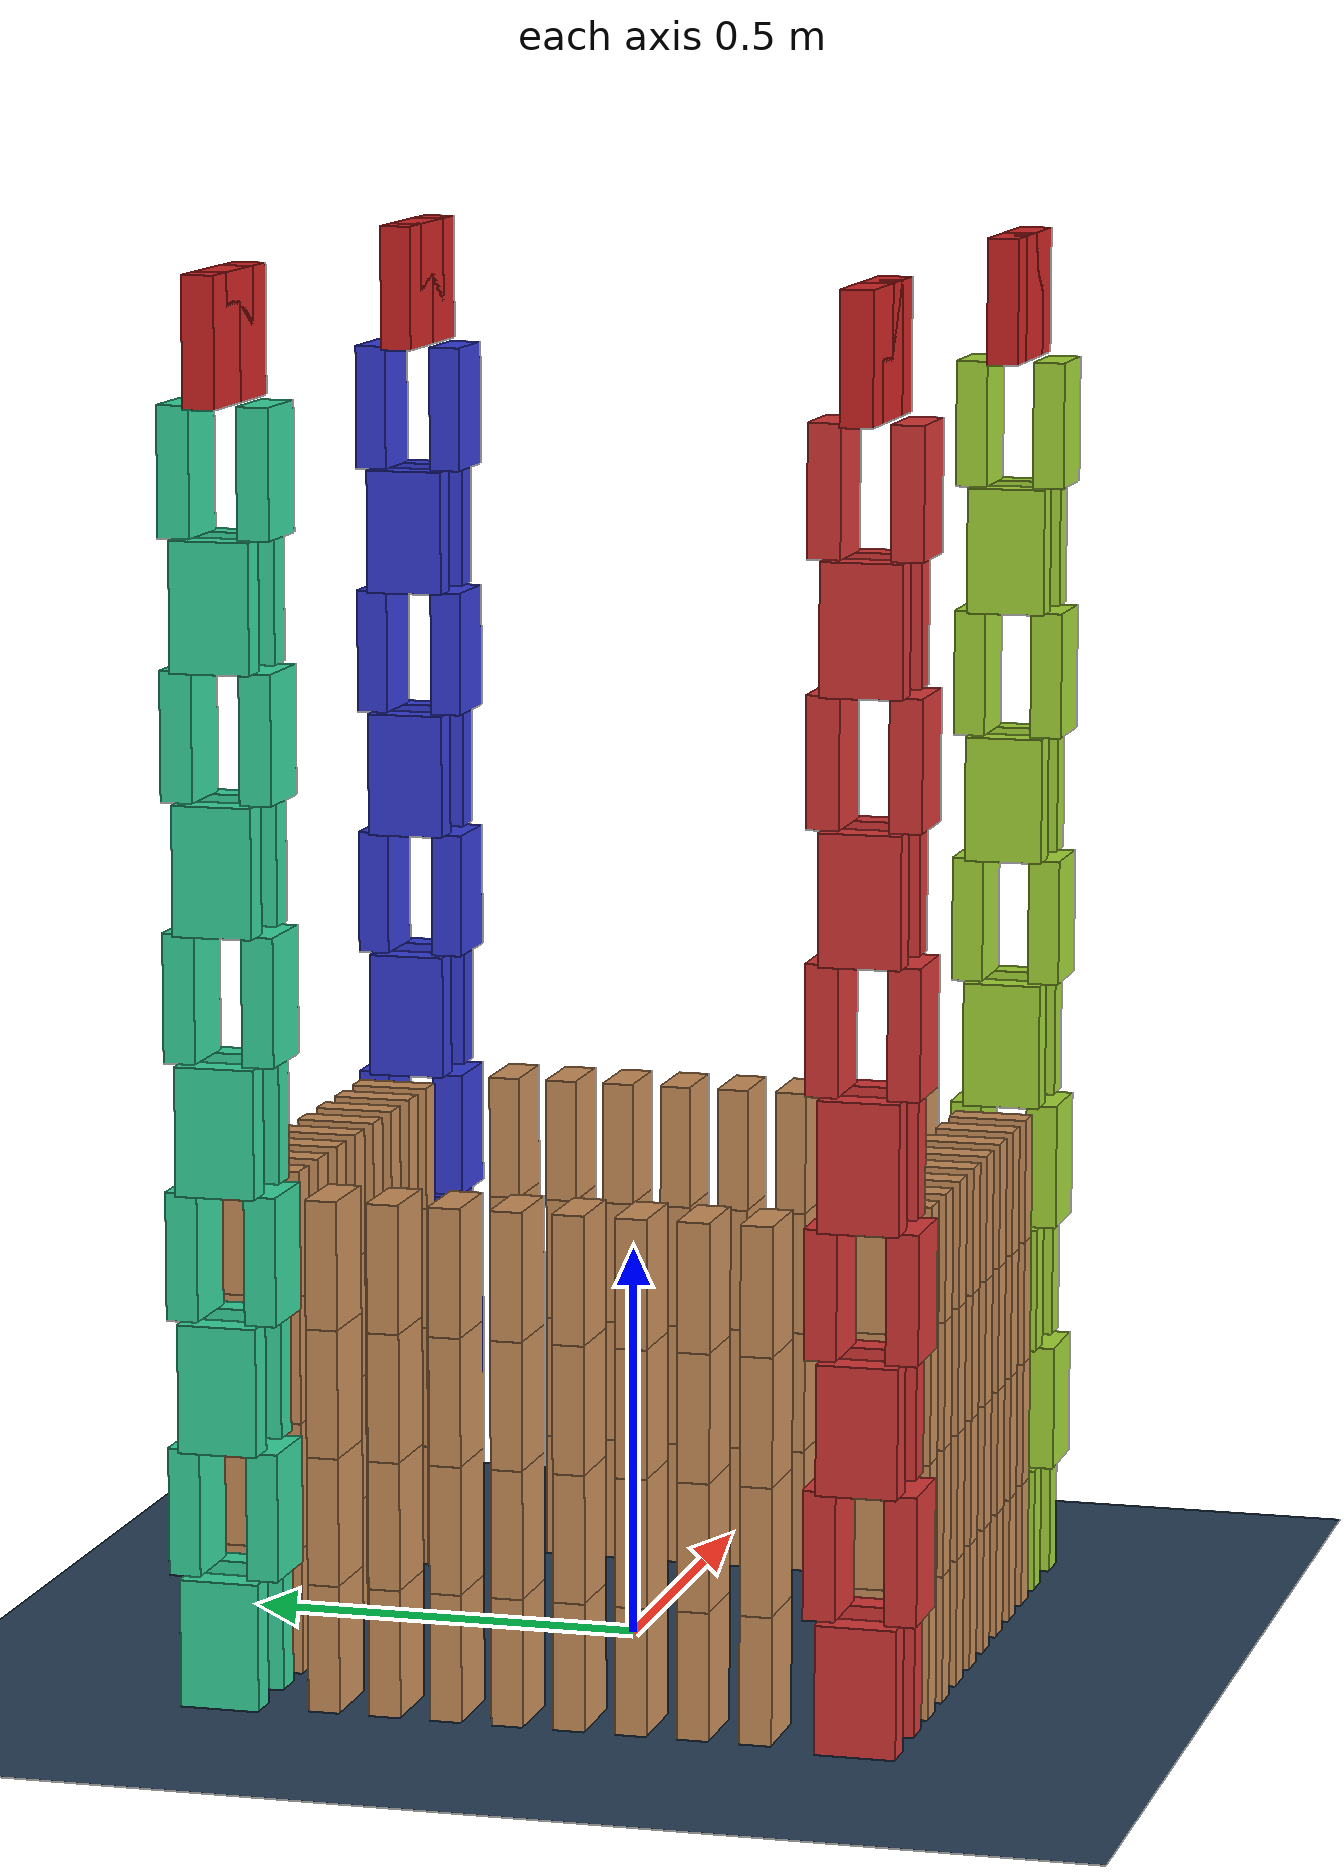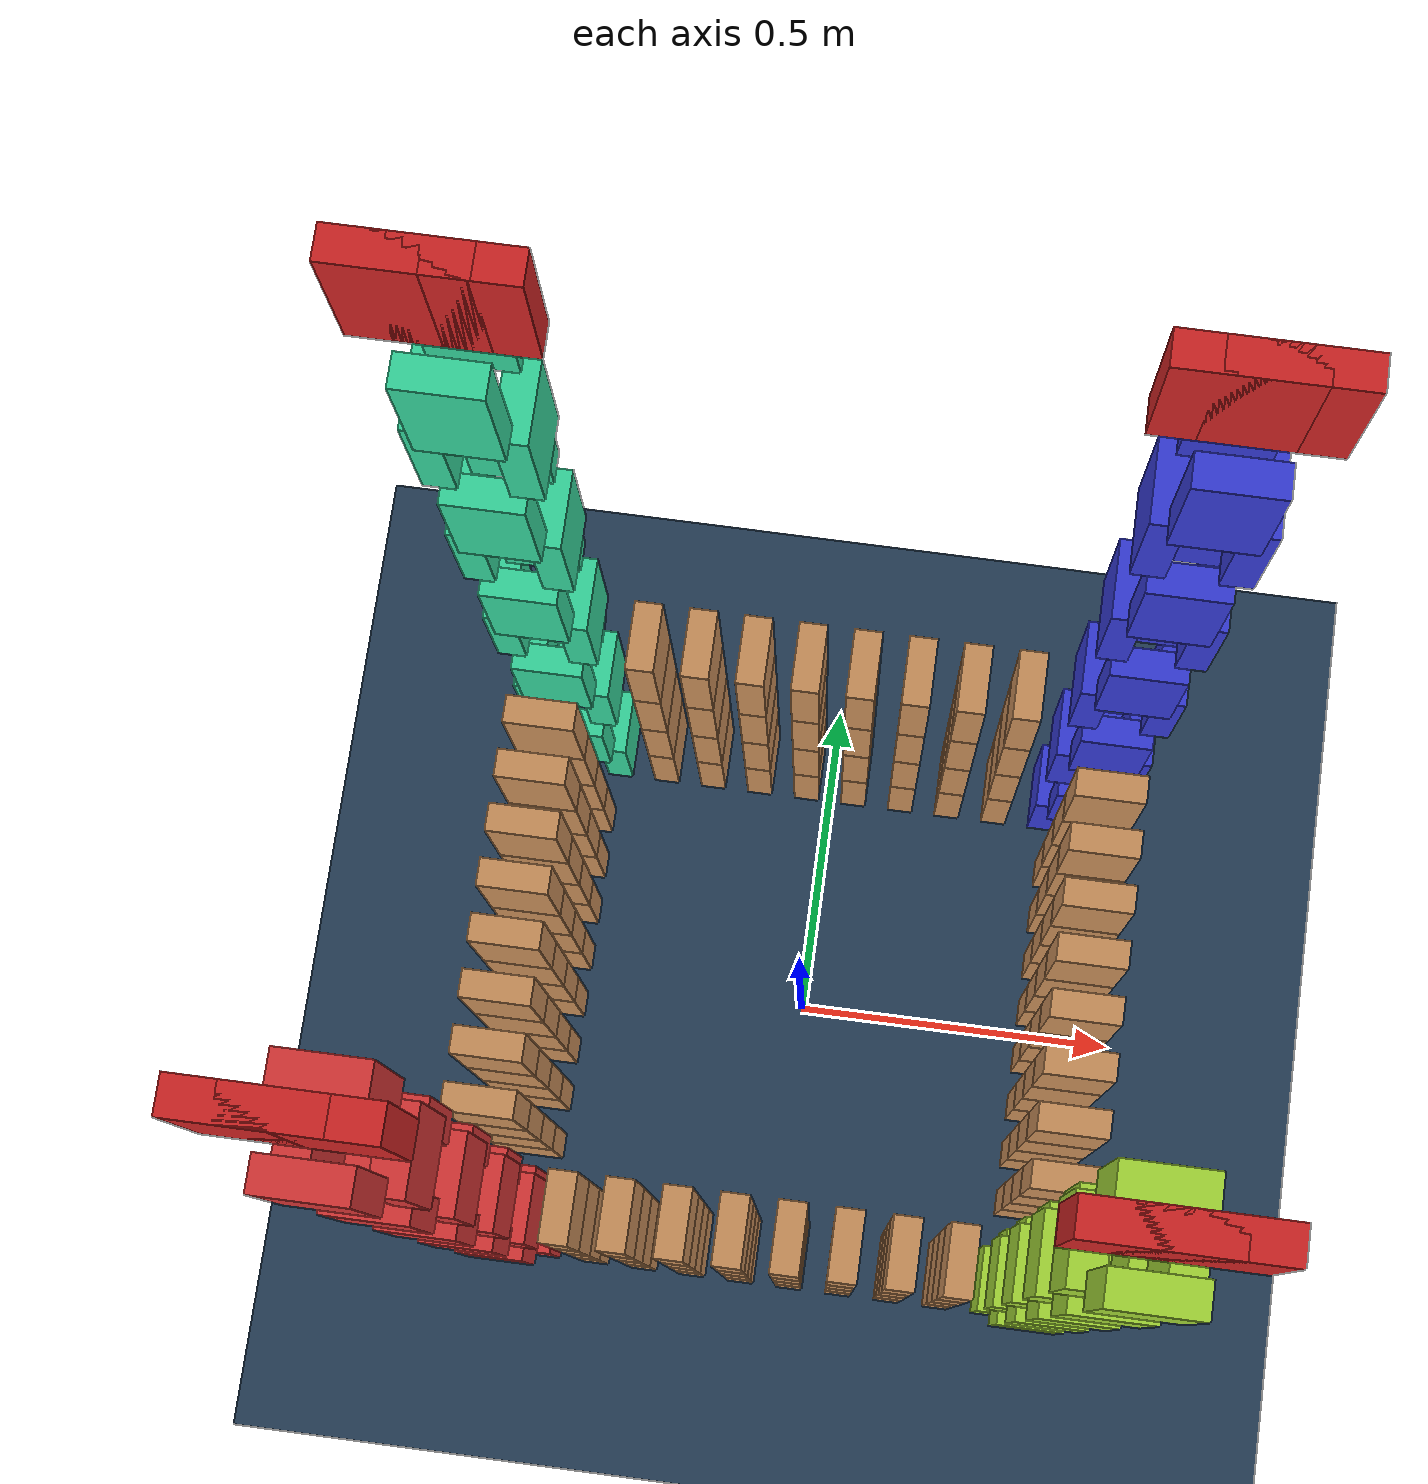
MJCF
<mujoco>
  <visual>
    <headlight diffuse="0.6 0.6 0.6" ambient="0.1 0.1 0.1" specular="0 0 0"/>
    <rgba haze="0.15 0.25 0.35 1"/>
    <global azimuth="120" elevation="-20"/>
  </visual>
  <asset>
    <texture type="skybox" builtin="gradient" rgb1="0.3 0.5 0.7" rgb2="0 0 0" width="512" height="3072"/>
    <texture type="2d" name="groundplane" builtin="checker" mark="edge" rgb1="0.2 0.3 0.4" rgb2="0.1 0.2 0.3" markrgb="0.8 0.8 0.8" width="300" height="300"/>
    <material name="groundplane" texture="groundplane" texuniform="true" texrepeat="5 5" reflectance="0.2"/>
  </asset>
  <worldbody>
    <light pos="0 0 1.5" dir="0 0 -1" directional="true"/>
    <geom name="floor" size="0 0 0.05" type="plane" material="groundplane"/>
    <body pos="-0.4500 -0.4000 0.0800" euler="0 0 0">
      <geom type="box" size="0.02 0.05 0.08" rgba="0.880 0.220 0.220 1"/>
      <freejoint/>
    </body>
    <body pos="-0.3500 -0.4000 0.0800" euler="0 0 0">
      <geom type="box" size="0.02 0.05 0.08" rgba="0.880 0.220 0.220 1"/>
      <freejoint/>
    </body>
    <body pos="-0.4000 -0.4500 0.2400" euler="0 0 90">
      <geom type="box" size="0.02 0.05 0.08" rgba="0.880 0.220 0.220 1"/>
      <freejoint/>
    </body>
    <body pos="-0.4000 -0.3500 0.2400" euler="0 0 90">
      <geom type="box" size="0.02 0.05 0.08" rgba="0.880 0.220 0.220 1"/>
      <freejoint/>
    </body>
    <body pos="-0.4500 -0.4000 0.4000" euler="0 0 0">
      <geom type="box" size="0.02 0.05 0.08" rgba="0.880 0.220 0.220 1"/>
      <freejoint/>
    </body>
    <body pos="-0.3500 -0.4000 0.4000" euler="0 0 0">
      <geom type="box" size="0.02 0.05 0.08" rgba="0.880 0.220 0.220 1"/>
      <freejoint/>
    </body>
    <body pos="-0.4000 -0.4500 0.5600" euler="0 0 90">
      <geom type="box" size="0.02 0.05 0.08" rgba="0.880 0.220 0.220 1"/>
      <freejoint/>
    </body>
    <body pos="-0.4000 -0.3500 0.5600" euler="0 0 90">
      <geom type="box" size="0.02 0.05 0.08" rgba="0.880 0.220 0.220 1"/>
      <freejoint/>
    </body>
    <body pos="-0.4500 -0.4000 0.7200" euler="0 0 0">
      <geom type="box" size="0.02 0.05 0.08" rgba="0.880 0.220 0.220 1"/>
      <freejoint/>
    </body>
    <body pos="-0.3500 -0.4000 0.7200" euler="0 0 0">
      <geom type="box" size="0.02 0.05 0.08" rgba="0.880 0.220 0.220 1"/>
      <freejoint/>
    </body>
    <body pos="-0.4000 -0.4500 0.8800" euler="0 0 90">
      <geom type="box" size="0.02 0.05 0.08" rgba="0.880 0.220 0.220 1"/>
      <freejoint/>
    </body>
    <body pos="-0.4000 -0.3500 0.8800" euler="0 0 90">
      <geom type="box" size="0.02 0.05 0.08" rgba="0.880 0.220 0.220 1"/>
      <freejoint/>
    </body>
    <body pos="-0.4500 -0.4000 1.0400" euler="0 0 0">
      <geom type="box" size="0.02 0.05 0.08" rgba="0.880 0.220 0.220 1"/>
      <freejoint/>
    </body>
    <body pos="-0.3500 -0.4000 1.0400" euler="0 0 0">
      <geom type="box" size="0.02 0.05 0.08" rgba="0.880 0.220 0.220 1"/>
      <freejoint/>
    </body>
    <body pos="-0.4000 -0.4500 1.2000" euler="0 0 90">
      <geom type="box" size="0.02 0.05 0.08" rgba="0.880 0.220 0.220 1"/>
      <freejoint/>
    </body>
    <body pos="-0.4000 -0.3500 1.2000" euler="0 0 90">
      <geom type="box" size="0.02 0.05 0.08" rgba="0.880 0.220 0.220 1"/>
      <freejoint/>
    </body>
    <body pos="-0.4500 -0.4000 1.3600" euler="0 0 0">
      <geom type="box" size="0.02 0.05 0.08" rgba="0.880 0.220 0.220 1"/>
      <freejoint/>
    </body>
    <body pos="-0.3500 -0.4000 1.3600" euler="0 0 0">
      <geom type="box" size="0.02 0.05 0.08" rgba="0.880 0.220 0.220 1"/>
      <freejoint/>
    </body>
    <body pos="-0.4000 -0.4500 1.5200" euler="0 0 90">
      <geom type="box" size="0.02 0.05 0.08" rgba="0.880 0.220 0.220 1"/>
      <freejoint/>
    </body>
    <body pos="-0.4000 -0.3500 1.5200" euler="0 0 90">
      <geom type="box" size="0.02 0.05 0.08" rgba="0.880 0.220 0.220 1"/>
      <freejoint/>
    </body>
    <body pos="-0.4500 -0.4000 1.6800" euler="0 0 90">
      <geom type="box" size="0.02 0.05 0.08" rgba="0.85 0.15 0.15 1"/>
      <freejoint/>
    </body>
    <body pos="-0.4000 -0.4000 1.6800" euler="0 0 90">
      <geom type="box" size="0.02 0.05 0.08" rgba="0.85 0.15 0.15 1"/>
      <freejoint/>
    </body>
    <body pos="-0.3500 -0.4000 1.6800" euler="0 0 90">
      <geom type="box" size="0.02 0.05 0.08" rgba="0.85 0.15 0.15 1"/>
      <freejoint/>
    </body>
    <body pos="0.3500 -0.4000 0.0800" euler="0 0 0">
      <geom type="box" size="0.02 0.05 0.08" rgba="0.669 0.880 0.220 1"/>
      <freejoint/>
    </body>
    <body pos="0.4500 -0.4000 0.0800" euler="0 0 0">
      <geom type="box" size="0.02 0.05 0.08" rgba="0.669 0.880 0.220 1"/>
      <freejoint/>
    </body>
    <body pos="0.4000 -0.4500 0.2400" euler="0 0 90">
      <geom type="box" size="0.02 0.05 0.08" rgba="0.669 0.880 0.220 1"/>
      <freejoint/>
    </body>
    <body pos="0.4000 -0.3500 0.2400" euler="0 0 90">
      <geom type="box" size="0.02 0.05 0.08" rgba="0.669 0.880 0.220 1"/>
      <freejoint/>
    </body>
    <body pos="0.3500 -0.4000 0.4000" euler="0 0 0">
      <geom type="box" size="0.02 0.05 0.08" rgba="0.669 0.880 0.220 1"/>
      <freejoint/>
    </body>
    <body pos="0.4500 -0.4000 0.4000" euler="0 0 0">
      <geom type="box" size="0.02 0.05 0.08" rgba="0.669 0.880 0.220 1"/>
      <freejoint/>
    </body>
    <body pos="0.4000 -0.4500 0.5600" euler="0 0 90">
      <geom type="box" size="0.02 0.05 0.08" rgba="0.669 0.880 0.220 1"/>
      <freejoint/>
    </body>
    <body pos="0.4000 -0.3500 0.5600" euler="0 0 90">
      <geom type="box" size="0.02 0.05 0.08" rgba="0.669 0.880 0.220 1"/>
      <freejoint/>
    </body>
    <body pos="0.3500 -0.4000 0.7200" euler="0 0 0">
      <geom type="box" size="0.02 0.05 0.08" rgba="0.669 0.880 0.220 1"/>
      <freejoint/>
    </body>
    <body pos="0.4500 -0.4000 0.7200" euler="0 0 0">
      <geom type="box" size="0.02 0.05 0.08" rgba="0.669 0.880 0.220 1"/>
      <freejoint/>
    </body>
    <body pos="0.4000 -0.4500 0.8800" euler="0 0 90">
      <geom type="box" size="0.02 0.05 0.08" rgba="0.669 0.880 0.220 1"/>
      <freejoint/>
    </body>
    <body pos="0.4000 -0.3500 0.8800" euler="0 0 90">
      <geom type="box" size="0.02 0.05 0.08" rgba="0.669 0.880 0.220 1"/>
      <freejoint/>
    </body>
    <body pos="0.3500 -0.4000 1.0400" euler="0 0 0">
      <geom type="box" size="0.02 0.05 0.08" rgba="0.669 0.880 0.220 1"/>
      <freejoint/>
    </body>
    <body pos="0.4500 -0.4000 1.0400" euler="0 0 0">
      <geom type="box" size="0.02 0.05 0.08" rgba="0.669 0.880 0.220 1"/>
      <freejoint/>
    </body>
    <body pos="0.4000 -0.4500 1.2000" euler="0 0 90">
      <geom type="box" size="0.02 0.05 0.08" rgba="0.669 0.880 0.220 1"/>
      <freejoint/>
    </body>
    <body pos="0.4000 -0.3500 1.2000" euler="0 0 90">
      <geom type="box" size="0.02 0.05 0.08" rgba="0.669 0.880 0.220 1"/>
      <freejoint/>
    </body>
    <body pos="0.3500 -0.4000 1.3600" euler="0 0 0">
      <geom type="box" size="0.02 0.05 0.08" rgba="0.669 0.880 0.220 1"/>
      <freejoint/>
    </body>
    <body pos="0.4500 -0.4000 1.3600" euler="0 0 0">
      <geom type="box" size="0.02 0.05 0.08" rgba="0.669 0.880 0.220 1"/>
      <freejoint/>
    </body>
    <body pos="0.4000 -0.4500 1.5200" euler="0 0 90">
      <geom type="box" size="0.02 0.05 0.08" rgba="0.669 0.880 0.220 1"/>
      <freejoint/>
    </body>
    <body pos="0.4000 -0.3500 1.5200" euler="0 0 90">
      <geom type="box" size="0.02 0.05 0.08" rgba="0.669 0.880 0.220 1"/>
      <freejoint/>
    </body>
    <body pos="0.3500 -0.4000 1.6800" euler="0 0 90">
      <geom type="box" size="0.02 0.05 0.08" rgba="0.85 0.15 0.15 1"/>
      <freejoint/>
    </body>
    <body pos="0.4000 -0.4000 1.6800" euler="0 0 90">
      <geom type="box" size="0.02 0.05 0.08" rgba="0.85 0.15 0.15 1"/>
      <freejoint/>
    </body>
    <body pos="0.4500 -0.4000 1.6800" euler="0 0 90">
      <geom type="box" size="0.02 0.05 0.08" rgba="0.85 0.15 0.15 1"/>
      <freejoint/>
    </body>
    <body pos="-0.4500 0.4000 0.0800" euler="0 0 0">
      <geom type="box" size="0.02 0.05 0.08" rgba="0.220 0.880 0.642 1"/>
      <freejoint/>
    </body>
    <body pos="-0.3500 0.4000 0.0800" euler="0 0 0">
      <geom type="box" size="0.02 0.05 0.08" rgba="0.220 0.880 0.642 1"/>
      <freejoint/>
    </body>
    <body pos="-0.4000 0.3500 0.2400" euler="0 0 90">
      <geom type="box" size="0.02 0.05 0.08" rgba="0.220 0.880 0.642 1"/>
      <freejoint/>
    </body>
    <body pos="-0.4000 0.4500 0.2400" euler="0 0 90">
      <geom type="box" size="0.02 0.05 0.08" rgba="0.220 0.880 0.642 1"/>
      <freejoint/>
    </body>
    <body pos="-0.4500 0.4000 0.4000" euler="0 0 0">
      <geom type="box" size="0.02 0.05 0.08" rgba="0.220 0.880 0.642 1"/>
      <freejoint/>
    </body>
    <body pos="-0.3500 0.4000 0.4000" euler="0 0 0">
      <geom type="box" size="0.02 0.05 0.08" rgba="0.220 0.880 0.642 1"/>
      <freejoint/>
    </body>
    <body pos="-0.4000 0.3500 0.5600" euler="0 0 90">
      <geom type="box" size="0.02 0.05 0.08" rgba="0.220 0.880 0.642 1"/>
      <freejoint/>
    </body>
    <body pos="-0.4000 0.4500 0.5600" euler="0 0 90">
      <geom type="box" size="0.02 0.05 0.08" rgba="0.220 0.880 0.642 1"/>
      <freejoint/>
    </body>
    <body pos="-0.4500 0.4000 0.7200" euler="0 0 0">
      <geom type="box" size="0.02 0.05 0.08" rgba="0.220 0.880 0.642 1"/>
      <freejoint/>
    </body>
    <body pos="-0.3500 0.4000 0.7200" euler="0 0 0">
      <geom type="box" size="0.02 0.05 0.08" rgba="0.220 0.880 0.642 1"/>
      <freejoint/>
    </body>
    <body pos="-0.4000 0.3500 0.8800" euler="0 0 90">
      <geom type="box" size="0.02 0.05 0.08" rgba="0.220 0.880 0.642 1"/>
      <freejoint/>
    </body>
    <body pos="-0.4000 0.4500 0.8800" euler="0 0 90">
      <geom type="box" size="0.02 0.05 0.08" rgba="0.220 0.880 0.642 1"/>
      <freejoint/>
    </body>
    <body pos="-0.4500 0.4000 1.0400" euler="0 0 0">
      <geom type="box" size="0.02 0.05 0.08" rgba="0.220 0.880 0.642 1"/>
      <freejoint/>
    </body>
    <body pos="-0.3500 0.4000 1.0400" euler="0 0 0">
      <geom type="box" size="0.02 0.05 0.08" rgba="0.220 0.880 0.642 1"/>
      <freejoint/>
    </body>
    <body pos="-0.4000 0.3500 1.2000" euler="0 0 90">
      <geom type="box" size="0.02 0.05 0.08" rgba="0.220 0.880 0.642 1"/>
      <freejoint/>
    </body>
    <body pos="-0.4000 0.4500 1.2000" euler="0 0 90">
      <geom type="box" size="0.02 0.05 0.08" rgba="0.220 0.880 0.642 1"/>
      <freejoint/>
    </body>
    <body pos="-0.4500 0.4000 1.3600" euler="0 0 0">
      <geom type="box" size="0.02 0.05 0.08" rgba="0.220 0.880 0.642 1"/>
      <freejoint/>
    </body>
    <body pos="-0.3500 0.4000 1.3600" euler="0 0 0">
      <geom type="box" size="0.02 0.05 0.08" rgba="0.220 0.880 0.642 1"/>
      <freejoint/>
    </body>
    <body pos="-0.4000 0.3500 1.5200" euler="0 0 90">
      <geom type="box" size="0.02 0.05 0.08" rgba="0.220 0.880 0.642 1"/>
      <freejoint/>
    </body>
    <body pos="-0.4000 0.4500 1.5200" euler="0 0 90">
      <geom type="box" size="0.02 0.05 0.08" rgba="0.220 0.880 0.642 1"/>
      <freejoint/>
    </body>
    <body pos="-0.4500 0.4000 1.6800" euler="0 0 90">
      <geom type="box" size="0.02 0.05 0.08" rgba="0.85 0.15 0.15 1"/>
      <freejoint/>
    </body>
    <body pos="-0.4000 0.4000 1.6800" euler="0 0 90">
      <geom type="box" size="0.02 0.05 0.08" rgba="0.85 0.15 0.15 1"/>
      <freejoint/>
    </body>
    <body pos="-0.3500 0.4000 1.6800" euler="0 0 90">
      <geom type="box" size="0.02 0.05 0.08" rgba="0.85 0.15 0.15 1"/>
      <freejoint/>
    </body>
    <body pos="0.3500 0.4000 0.0800" euler="0 0 0">
      <geom type="box" size="0.02 0.05 0.08" rgba="0.220 0.246 0.880 1"/>
      <freejoint/>
    </body>
    <body pos="0.4500 0.4000 0.0800" euler="0 0 0">
      <geom type="box" size="0.02 0.05 0.08" rgba="0.220 0.246 0.880 1"/>
      <freejoint/>
    </body>
    <body pos="0.4000 0.3500 0.2400" euler="0 0 90">
      <geom type="box" size="0.02 0.05 0.08" rgba="0.220 0.246 0.880 1"/>
      <freejoint/>
    </body>
    <body pos="0.4000 0.4500 0.2400" euler="0 0 90">
      <geom type="box" size="0.02 0.05 0.08" rgba="0.220 0.246 0.880 1"/>
      <freejoint/>
    </body>
    <body pos="0.3500 0.4000 0.4000" euler="0 0 0">
      <geom type="box" size="0.02 0.05 0.08" rgba="0.220 0.246 0.880 1"/>
      <freejoint/>
    </body>
    <body pos="0.4500 0.4000 0.4000" euler="0 0 0">
      <geom type="box" size="0.02 0.05 0.08" rgba="0.220 0.246 0.880 1"/>
      <freejoint/>
    </body>
    <body pos="0.4000 0.3500 0.5600" euler="0 0 90">
      <geom type="box" size="0.02 0.05 0.08" rgba="0.220 0.246 0.880 1"/>
      <freejoint/>
    </body>
    <body pos="0.4000 0.4500 0.5600" euler="0 0 90">
      <geom type="box" size="0.02 0.05 0.08" rgba="0.220 0.246 0.880 1"/>
      <freejoint/>
    </body>
    <body pos="0.3500 0.4000 0.7200" euler="0 0 0">
      <geom type="box" size="0.02 0.05 0.08" rgba="0.220 0.246 0.880 1"/>
      <freejoint/>
    </body>
    <body pos="0.4500 0.4000 0.7200" euler="0 0 0">
      <geom type="box" size="0.02 0.05 0.08" rgba="0.220 0.246 0.880 1"/>
      <freejoint/>
    </body>
    <body pos="0.4000 0.3500 0.8800" euler="0 0 90">
      <geom type="box" size="0.02 0.05 0.08" rgba="0.220 0.246 0.880 1"/>
      <freejoint/>
    </body>
    <body pos="0.4000 0.4500 0.8800" euler="0 0 90">
      <geom type="box" size="0.02 0.05 0.08" rgba="0.220 0.246 0.880 1"/>
      <freejoint/>
    </body>
    <body pos="0.3500 0.4000 1.0400" euler="0 0 0">
      <geom type="box" size="0.02 0.05 0.08" rgba="0.220 0.246 0.880 1"/>
      <freejoint/>
    </body>
    <body pos="0.4500 0.4000 1.0400" euler="0 0 0">
      <geom type="box" size="0.02 0.05 0.08" rgba="0.220 0.246 0.880 1"/>
      <freejoint/>
    </body>
    <body pos="0.4000 0.3500 1.2000" euler="0 0 90">
      <geom type="box" size="0.02 0.05 0.08" rgba="0.220 0.246 0.880 1"/>
      <freejoint/>
    </body>
    <body pos="0.4000 0.4500 1.2000" euler="0 0 90">
      <geom type="box" size="0.02 0.05 0.08" rgba="0.220 0.246 0.880 1"/>
      <freejoint/>
    </body>
    <body pos="0.3500 0.4000 1.3600" euler="0 0 0">
      <geom type="box" size="0.02 0.05 0.08" rgba="0.220 0.246 0.880 1"/>
      <freejoint/>
    </body>
    <body pos="0.4500 0.4000 1.3600" euler="0 0 0">
      <geom type="box" size="0.02 0.05 0.08" rgba="0.220 0.246 0.880 1"/>
      <freejoint/>
    </body>
    <body pos="0.4000 0.3500 1.5200" euler="0 0 90">
      <geom type="box" size="0.02 0.05 0.08" rgba="0.220 0.246 0.880 1"/>
      <freejoint/>
    </body>
    <body pos="0.4000 0.4500 1.5200" euler="0 0 90">
      <geom type="box" size="0.02 0.05 0.08" rgba="0.220 0.246 0.880 1"/>
      <freejoint/>
    </body>
    <body pos="0.3500 0.4000 1.6800" euler="0 0 90">
      <geom type="box" size="0.02 0.05 0.08" rgba="0.85 0.15 0.15 1"/>
      <freejoint/>
    </body>
    <body pos="0.4000 0.4000 1.6800" euler="0 0 90">
      <geom type="box" size="0.02 0.05 0.08" rgba="0.85 0.15 0.15 1"/>
      <freejoint/>
    </body>
    <body pos="0.4500 0.4000 1.6800" euler="0 0 90">
      <geom type="box" size="0.02 0.05 0.08" rgba="0.85 0.15 0.15 1"/>
      <freejoint/>
    </body>
    <body pos="-0.2722 -0.4000 0.0800" euler="0 0 0">
      <geom type="box" size="0.02 0.05 0.08" rgba="0.820 0.585 0.369 1"/>
      <freejoint/>
    </body>
    <body pos="-0.2722 -0.4000 0.2400" euler="0 0 0">
      <geom type="box" size="0.02 0.05 0.08" rgba="0.820 0.585 0.369 1"/>
      <freejoint/>
    </body>
    <body pos="-0.2722 -0.4000 0.4000" euler="0 0 0">
      <geom type="box" size="0.02 0.05 0.08" rgba="0.820 0.585 0.369 1"/>
      <freejoint/>
    </body>
    <body pos="-0.2722 -0.4000 0.5600" euler="0 0 0">
      <geom type="box" size="0.02 0.05 0.08" rgba="0.820 0.585 0.369 1"/>
      <freejoint/>
    </body>
    <body pos="-0.1944 -0.4000 0.0800" euler="0 0 0">
      <geom type="box" size="0.02 0.05 0.08" rgba="0.820 0.585 0.369 1"/>
      <freejoint/>
    </body>
    <body pos="-0.1944 -0.4000 0.2400" euler="0 0 0">
      <geom type="box" size="0.02 0.05 0.08" rgba="0.820 0.585 0.369 1"/>
      <freejoint/>
    </body>
    <body pos="-0.1944 -0.4000 0.4000" euler="0 0 0">
      <geom type="box" size="0.02 0.05 0.08" rgba="0.820 0.585 0.369 1"/>
      <freejoint/>
    </body>
    <body pos="-0.1944 -0.4000 0.5600" euler="0 0 0">
      <geom type="box" size="0.02 0.05 0.08" rgba="0.820 0.585 0.369 1"/>
      <freejoint/>
    </body>
    <body pos="-0.1167 -0.4000 0.0800" euler="0 0 0">
      <geom type="box" size="0.02 0.05 0.08" rgba="0.820 0.585 0.369 1"/>
      <freejoint/>
    </body>
    <body pos="-0.1167 -0.4000 0.2400" euler="0 0 0">
      <geom type="box" size="0.02 0.05 0.08" rgba="0.820 0.585 0.369 1"/>
      <freejoint/>
    </body>
    <body pos="-0.1167 -0.4000 0.4000" euler="0 0 0">
      <geom type="box" size="0.02 0.05 0.08" rgba="0.820 0.585 0.369 1"/>
      <freejoint/>
    </body>
    <body pos="-0.1167 -0.4000 0.5600" euler="0 0 0">
      <geom type="box" size="0.02 0.05 0.08" rgba="0.820 0.585 0.369 1"/>
      <freejoint/>
    </body>
    <body pos="-0.0389 -0.4000 0.0800" euler="0 0 0">
      <geom type="box" size="0.02 0.05 0.08" rgba="0.820 0.585 0.369 1"/>
      <freejoint/>
    </body>
    <body pos="-0.0389 -0.4000 0.2400" euler="0 0 0">
      <geom type="box" size="0.02 0.05 0.08" rgba="0.820 0.585 0.369 1"/>
      <freejoint/>
    </body>
    <body pos="-0.0389 -0.4000 0.4000" euler="0 0 0">
      <geom type="box" size="0.02 0.05 0.08" rgba="0.820 0.585 0.369 1"/>
      <freejoint/>
    </body>
    <body pos="-0.0389 -0.4000 0.5600" euler="0 0 0">
      <geom type="box" size="0.02 0.05 0.08" rgba="0.820 0.585 0.369 1"/>
      <freejoint/>
    </body>
    <body pos="0.0389 -0.4000 0.0800" euler="0 0 0">
      <geom type="box" size="0.02 0.05 0.08" rgba="0.820 0.585 0.369 1"/>
      <freejoint/>
    </body>
    <body pos="0.0389 -0.4000 0.2400" euler="0 0 0">
      <geom type="box" size="0.02 0.05 0.08" rgba="0.820 0.585 0.369 1"/>
      <freejoint/>
    </body>
    <body pos="0.0389 -0.4000 0.4000" euler="0 0 0">
      <geom type="box" size="0.02 0.05 0.08" rgba="0.820 0.585 0.369 1"/>
      <freejoint/>
    </body>
    <body pos="0.0389 -0.4000 0.5600" euler="0 0 0">
      <geom type="box" size="0.02 0.05 0.08" rgba="0.820 0.585 0.369 1"/>
      <freejoint/>
    </body>
    <body pos="0.1167 -0.4000 0.0800" euler="0 0 0">
      <geom type="box" size="0.02 0.05 0.08" rgba="0.820 0.585 0.369 1"/>
      <freejoint/>
    </body>
    <body pos="0.1167 -0.4000 0.2400" euler="0 0 0">
      <geom type="box" size="0.02 0.05 0.08" rgba="0.820 0.585 0.369 1"/>
      <freejoint/>
    </body>
    <body pos="0.1167 -0.4000 0.4000" euler="0 0 0">
      <geom type="box" size="0.02 0.05 0.08" rgba="0.820 0.585 0.369 1"/>
      <freejoint/>
    </body>
    <body pos="0.1167 -0.4000 0.5600" euler="0 0 0">
      <geom type="box" size="0.02 0.05 0.08" rgba="0.820 0.585 0.369 1"/>
      <freejoint/>
    </body>
    <body pos="0.1944 -0.4000 0.0800" euler="0 0 0">
      <geom type="box" size="0.02 0.05 0.08" rgba="0.820 0.585 0.369 1"/>
      <freejoint/>
    </body>
    <body pos="0.1944 -0.4000 0.2400" euler="0 0 0">
      <geom type="box" size="0.02 0.05 0.08" rgba="0.820 0.585 0.369 1"/>
      <freejoint/>
    </body>
    <body pos="0.1944 -0.4000 0.4000" euler="0 0 0">
      <geom type="box" size="0.02 0.05 0.08" rgba="0.820 0.585 0.369 1"/>
      <freejoint/>
    </body>
    <body pos="0.1944 -0.4000 0.5600" euler="0 0 0">
      <geom type="box" size="0.02 0.05 0.08" rgba="0.820 0.585 0.369 1"/>
      <freejoint/>
    </body>
    <body pos="0.2722 -0.4000 0.0800" euler="0 0 0">
      <geom type="box" size="0.02 0.05 0.08" rgba="0.820 0.585 0.369 1"/>
      <freejoint/>
    </body>
    <body pos="0.2722 -0.4000 0.2400" euler="0 0 0">
      <geom type="box" size="0.02 0.05 0.08" rgba="0.820 0.585 0.369 1"/>
      <freejoint/>
    </body>
    <body pos="0.2722 -0.4000 0.4000" euler="0 0 0">
      <geom type="box" size="0.02 0.05 0.08" rgba="0.820 0.585 0.369 1"/>
      <freejoint/>
    </body>
    <body pos="0.2722 -0.4000 0.5600" euler="0 0 0">
      <geom type="box" size="0.02 0.05 0.08" rgba="0.820 0.585 0.369 1"/>
      <freejoint/>
    </body>
    <body pos="-0.2722 0.4000 0.0800" euler="0 0 0">
      <geom type="box" size="0.02 0.05 0.08" rgba="0.820 0.585 0.369 1"/>
      <freejoint/>
    </body>
    <body pos="-0.2722 0.4000 0.2400" euler="0 0 0">
      <geom type="box" size="0.02 0.05 0.08" rgba="0.820 0.585 0.369 1"/>
      <freejoint/>
    </body>
    <body pos="-0.2722 0.4000 0.4000" euler="0 0 0">
      <geom type="box" size="0.02 0.05 0.08" rgba="0.820 0.585 0.369 1"/>
      <freejoint/>
    </body>
    <body pos="-0.2722 0.4000 0.5600" euler="0 0 0">
      <geom type="box" size="0.02 0.05 0.08" rgba="0.820 0.585 0.369 1"/>
      <freejoint/>
    </body>
    <body pos="-0.1944 0.4000 0.0800" euler="0 0 0">
      <geom type="box" size="0.02 0.05 0.08" rgba="0.820 0.585 0.369 1"/>
      <freejoint/>
    </body>
    <body pos="-0.1944 0.4000 0.2400" euler="0 0 0">
      <geom type="box" size="0.02 0.05 0.08" rgba="0.820 0.585 0.369 1"/>
      <freejoint/>
    </body>
    <body pos="-0.1944 0.4000 0.4000" euler="0 0 0">
      <geom type="box" size="0.02 0.05 0.08" rgba="0.820 0.585 0.369 1"/>
      <freejoint/>
    </body>
    <body pos="-0.1944 0.4000 0.5600" euler="0 0 0">
      <geom type="box" size="0.02 0.05 0.08" rgba="0.820 0.585 0.369 1"/>
      <freejoint/>
    </body>
    <body pos="-0.1167 0.4000 0.0800" euler="0 0 0">
      <geom type="box" size="0.02 0.05 0.08" rgba="0.820 0.585 0.369 1"/>
      <freejoint/>
    </body>
    <body pos="-0.1167 0.4000 0.2400" euler="0 0 0">
      <geom type="box" size="0.02 0.05 0.08" rgba="0.820 0.585 0.369 1"/>
      <freejoint/>
    </body>
    <body pos="-0.1167 0.4000 0.4000" euler="0 0 0">
      <geom type="box" size="0.02 0.05 0.08" rgba="0.820 0.585 0.369 1"/>
      <freejoint/>
    </body>
    <body pos="-0.1167 0.4000 0.5600" euler="0 0 0">
      <geom type="box" size="0.02 0.05 0.08" rgba="0.820 0.585 0.369 1"/>
      <freejoint/>
    </body>
    <body pos="-0.0389 0.4000 0.0800" euler="0 0 0">
      <geom type="box" size="0.02 0.05 0.08" rgba="0.820 0.585 0.369 1"/>
      <freejoint/>
    </body>
    <body pos="-0.0389 0.4000 0.2400" euler="0 0 0">
      <geom type="box" size="0.02 0.05 0.08" rgba="0.820 0.585 0.369 1"/>
      <freejoint/>
    </body>
    <body pos="-0.0389 0.4000 0.4000" euler="0 0 0">
      <geom type="box" size="0.02 0.05 0.08" rgba="0.820 0.585 0.369 1"/>
      <freejoint/>
    </body>
    <body pos="-0.0389 0.4000 0.5600" euler="0 0 0">
      <geom type="box" size="0.02 0.05 0.08" rgba="0.820 0.585 0.369 1"/>
      <freejoint/>
    </body>
    <body pos="0.0389 0.4000 0.0800" euler="0 0 0">
      <geom type="box" size="0.02 0.05 0.08" rgba="0.820 0.585 0.369 1"/>
      <freejoint/>
    </body>
    <body pos="0.0389 0.4000 0.2400" euler="0 0 0">
      <geom type="box" size="0.02 0.05 0.08" rgba="0.820 0.585 0.369 1"/>
      <freejoint/>
    </body>
    <body pos="0.0389 0.4000 0.4000" euler="0 0 0">
      <geom type="box" size="0.02 0.05 0.08" rgba="0.820 0.585 0.369 1"/>
      <freejoint/>
    </body>
    <body pos="0.0389 0.4000 0.5600" euler="0 0 0">
      <geom type="box" size="0.02 0.05 0.08" rgba="0.820 0.585 0.369 1"/>
      <freejoint/>
    </body>
    <body pos="0.1167 0.4000 0.0800" euler="0 0 0">
      <geom type="box" size="0.02 0.05 0.08" rgba="0.820 0.585 0.369 1"/>
      <freejoint/>
    </body>
    <body pos="0.1167 0.4000 0.2400" euler="0 0 0">
      <geom type="box" size="0.02 0.05 0.08" rgba="0.820 0.585 0.369 1"/>
      <freejoint/>
    </body>
    <body pos="0.1167 0.4000 0.4000" euler="0 0 0">
      <geom type="box" size="0.02 0.05 0.08" rgba="0.820 0.585 0.369 1"/>
      <freejoint/>
    </body>
    <body pos="0.1167 0.4000 0.5600" euler="0 0 0">
      <geom type="box" size="0.02 0.05 0.08" rgba="0.820 0.585 0.369 1"/>
      <freejoint/>
    </body>
    <body pos="0.1944 0.4000 0.0800" euler="0 0 0">
      <geom type="box" size="0.02 0.05 0.08" rgba="0.820 0.585 0.369 1"/>
      <freejoint/>
    </body>
    <body pos="0.1944 0.4000 0.2400" euler="0 0 0">
      <geom type="box" size="0.02 0.05 0.08" rgba="0.820 0.585 0.369 1"/>
      <freejoint/>
    </body>
    <body pos="0.1944 0.4000 0.4000" euler="0 0 0">
      <geom type="box" size="0.02 0.05 0.08" rgba="0.820 0.585 0.369 1"/>
      <freejoint/>
    </body>
    <body pos="0.1944 0.4000 0.5600" euler="0 0 0">
      <geom type="box" size="0.02 0.05 0.08" rgba="0.820 0.585 0.369 1"/>
      <freejoint/>
    </body>
    <body pos="0.2722 0.4000 0.0800" euler="0 0 0">
      <geom type="box" size="0.02 0.05 0.08" rgba="0.820 0.585 0.369 1"/>
      <freejoint/>
    </body>
    <body pos="0.2722 0.4000 0.2400" euler="0 0 0">
      <geom type="box" size="0.02 0.05 0.08" rgba="0.820 0.585 0.369 1"/>
      <freejoint/>
    </body>
    <body pos="0.2722 0.4000 0.4000" euler="0 0 0">
      <geom type="box" size="0.02 0.05 0.08" rgba="0.820 0.585 0.369 1"/>
      <freejoint/>
    </body>
    <body pos="0.2722 0.4000 0.5600" euler="0 0 0">
      <geom type="box" size="0.02 0.05 0.08" rgba="0.820 0.585 0.369 1"/>
      <freejoint/>
    </body>
    <body pos="-0.4000 -0.2722 0.0800" euler="0 0 90">
      <geom type="box" size="0.02 0.05 0.08" rgba="0.820 0.585 0.369 1"/>
      <freejoint/>
    </body>
    <body pos="-0.4000 -0.2722 0.2400" euler="0 0 90">
      <geom type="box" size="0.02 0.05 0.08" rgba="0.820 0.585 0.369 1"/>
      <freejoint/>
    </body>
    <body pos="-0.4000 -0.2722 0.4000" euler="0 0 90">
      <geom type="box" size="0.02 0.05 0.08" rgba="0.820 0.585 0.369 1"/>
      <freejoint/>
    </body>
    <body pos="-0.4000 -0.2722 0.5600" euler="0 0 90">
      <geom type="box" size="0.02 0.05 0.08" rgba="0.820 0.585 0.369 1"/>
      <freejoint/>
    </body>
    <body pos="-0.4000 -0.1944 0.0800" euler="0 0 90">
      <geom type="box" size="0.02 0.05 0.08" rgba="0.820 0.585 0.369 1"/>
      <freejoint/>
    </body>
    <body pos="-0.4000 -0.1944 0.2400" euler="0 0 90">
      <geom type="box" size="0.02 0.05 0.08" rgba="0.820 0.585 0.369 1"/>
      <freejoint/>
    </body>
    <body pos="-0.4000 -0.1944 0.4000" euler="0 0 90">
      <geom type="box" size="0.02 0.05 0.08" rgba="0.820 0.585 0.369 1"/>
      <freejoint/>
    </body>
    <body pos="-0.4000 -0.1944 0.5600" euler="0 0 90">
      <geom type="box" size="0.02 0.05 0.08" rgba="0.820 0.585 0.369 1"/>
      <freejoint/>
    </body>
    <body pos="-0.4000 -0.1167 0.0800" euler="0 0 90">
      <geom type="box" size="0.02 0.05 0.08" rgba="0.820 0.585 0.369 1"/>
      <freejoint/>
    </body>
    <body pos="-0.4000 -0.1167 0.2400" euler="0 0 90">
      <geom type="box" size="0.02 0.05 0.08" rgba="0.820 0.585 0.369 1"/>
      <freejoint/>
    </body>
    <body pos="-0.4000 -0.1167 0.4000" euler="0 0 90">
      <geom type="box" size="0.02 0.05 0.08" rgba="0.820 0.585 0.369 1"/>
      <freejoint/>
    </body>
    <body pos="-0.4000 -0.1167 0.5600" euler="0 0 90">
      <geom type="box" size="0.02 0.05 0.08" rgba="0.820 0.585 0.369 1"/>
      <freejoint/>
    </body>
    <body pos="-0.4000 -0.0389 0.0800" euler="0 0 90">
      <geom type="box" size="0.02 0.05 0.08" rgba="0.820 0.585 0.369 1"/>
      <freejoint/>
    </body>
    <body pos="-0.4000 -0.0389 0.2400" euler="0 0 90">
      <geom type="box" size="0.02 0.05 0.08" rgba="0.820 0.585 0.369 1"/>
      <freejoint/>
    </body>
    <body pos="-0.4000 -0.0389 0.4000" euler="0 0 90">
      <geom type="box" size="0.02 0.05 0.08" rgba="0.820 0.585 0.369 1"/>
      <freejoint/>
    </body>
    <body pos="-0.4000 -0.0389 0.5600" euler="0 0 90">
      <geom type="box" size="0.02 0.05 0.08" rgba="0.820 0.585 0.369 1"/>
      <freejoint/>
    </body>
    <body pos="-0.4000 0.0389 0.0800" euler="0 0 90">
      <geom type="box" size="0.02 0.05 0.08" rgba="0.820 0.585 0.369 1"/>
      <freejoint/>
    </body>
    <body pos="-0.4000 0.0389 0.2400" euler="0 0 90">
      <geom type="box" size="0.02 0.05 0.08" rgba="0.820 0.585 0.369 1"/>
      <freejoint/>
    </body>
    <body pos="-0.4000 0.0389 0.4000" euler="0 0 90">
      <geom type="box" size="0.02 0.05 0.08" rgba="0.820 0.585 0.369 1"/>
      <freejoint/>
    </body>
    <body pos="-0.4000 0.0389 0.5600" euler="0 0 90">
      <geom type="box" size="0.02 0.05 0.08" rgba="0.820 0.585 0.369 1"/>
      <freejoint/>
    </body>
    <body pos="-0.4000 0.1167 0.0800" euler="0 0 90">
      <geom type="box" size="0.02 0.05 0.08" rgba="0.820 0.585 0.369 1"/>
      <freejoint/>
    </body>
    <body pos="-0.4000 0.1167 0.2400" euler="0 0 90">
      <geom type="box" size="0.02 0.05 0.08" rgba="0.820 0.585 0.369 1"/>
      <freejoint/>
    </body>
    <body pos="-0.4000 0.1167 0.4000" euler="0 0 90">
      <geom type="box" size="0.02 0.05 0.08" rgba="0.820 0.585 0.369 1"/>
      <freejoint/>
    </body>
    <body pos="-0.4000 0.1167 0.5600" euler="0 0 90">
      <geom type="box" size="0.02 0.05 0.08" rgba="0.820 0.585 0.369 1"/>
      <freejoint/>
    </body>
    <body pos="-0.4000 0.1944 0.0800" euler="0 0 90">
      <geom type="box" size="0.02 0.05 0.08" rgba="0.820 0.585 0.369 1"/>
      <freejoint/>
    </body>
    <body pos="-0.4000 0.1944 0.2400" euler="0 0 90">
      <geom type="box" size="0.02 0.05 0.08" rgba="0.820 0.585 0.369 1"/>
      <freejoint/>
    </body>
    <body pos="-0.4000 0.1944 0.4000" euler="0 0 90">
      <geom type="box" size="0.02 0.05 0.08" rgba="0.820 0.585 0.369 1"/>
      <freejoint/>
    </body>
    <body pos="-0.4000 0.1944 0.5600" euler="0 0 90">
      <geom type="box" size="0.02 0.05 0.08" rgba="0.820 0.585 0.369 1"/>
      <freejoint/>
    </body>
    <body pos="-0.4000 0.2722 0.0800" euler="0 0 90">
      <geom type="box" size="0.02 0.05 0.08" rgba="0.820 0.585 0.369 1"/>
      <freejoint/>
    </body>
    <body pos="-0.4000 0.2722 0.2400" euler="0 0 90">
      <geom type="box" size="0.02 0.05 0.08" rgba="0.820 0.585 0.369 1"/>
      <freejoint/>
    </body>
    <body pos="-0.4000 0.2722 0.4000" euler="0 0 90">
      <geom type="box" size="0.02 0.05 0.08" rgba="0.820 0.585 0.369 1"/>
      <freejoint/>
    </body>
    <body pos="-0.4000 0.2722 0.5600" euler="0 0 90">
      <geom type="box" size="0.02 0.05 0.08" rgba="0.820 0.585 0.369 1"/>
      <freejoint/>
    </body>
    <body pos="0.4000 -0.2722 0.0800" euler="0 0 90">
      <geom type="box" size="0.02 0.05 0.08" rgba="0.820 0.585 0.369 1"/>
      <freejoint/>
    </body>
    <body pos="0.4000 -0.2722 0.2400" euler="0 0 90">
      <geom type="box" size="0.02 0.05 0.08" rgba="0.820 0.585 0.369 1"/>
      <freejoint/>
    </body>
    <body pos="0.4000 -0.2722 0.4000" euler="0 0 90">
      <geom type="box" size="0.02 0.05 0.08" rgba="0.820 0.585 0.369 1"/>
      <freejoint/>
    </body>
    <body pos="0.4000 -0.2722 0.5600" euler="0 0 90">
      <geom type="box" size="0.02 0.05 0.08" rgba="0.820 0.585 0.369 1"/>
      <freejoint/>
    </body>
    <body pos="0.4000 -0.1944 0.0800" euler="0 0 90">
      <geom type="box" size="0.02 0.05 0.08" rgba="0.820 0.585 0.369 1"/>
      <freejoint/>
    </body>
    <body pos="0.4000 -0.1944 0.2400" euler="0 0 90">
      <geom type="box" size="0.02 0.05 0.08" rgba="0.820 0.585 0.369 1"/>
      <freejoint/>
    </body>
    <body pos="0.4000 -0.1944 0.4000" euler="0 0 90">
      <geom type="box" size="0.02 0.05 0.08" rgba="0.820 0.585 0.369 1"/>
      <freejoint/>
    </body>
    <body pos="0.4000 -0.1944 0.5600" euler="0 0 90">
      <geom type="box" size="0.02 0.05 0.08" rgba="0.820 0.585 0.369 1"/>
      <freejoint/>
    </body>
    <body pos="0.4000 -0.1167 0.0800" euler="0 0 90">
      <geom type="box" size="0.02 0.05 0.08" rgba="0.820 0.585 0.369 1"/>
      <freejoint/>
    </body>
    <body pos="0.4000 -0.1167 0.2400" euler="0 0 90">
      <geom type="box" size="0.02 0.05 0.08" rgba="0.820 0.585 0.369 1"/>
      <freejoint/>
    </body>
    <body pos="0.4000 -0.1167 0.4000" euler="0 0 90">
      <geom type="box" size="0.02 0.05 0.08" rgba="0.820 0.585 0.369 1"/>
      <freejoint/>
    </body>
    <body pos="0.4000 -0.1167 0.5600" euler="0 0 90">
      <geom type="box" size="0.02 0.05 0.08" rgba="0.820 0.585 0.369 1"/>
      <freejoint/>
    </body>
    <body pos="0.4000 -0.0389 0.0800" euler="0 0 90">
      <geom type="box" size="0.02 0.05 0.08" rgba="0.820 0.585 0.369 1"/>
      <freejoint/>
    </body>
    <body pos="0.4000 -0.0389 0.2400" euler="0 0 90">
      <geom type="box" size="0.02 0.05 0.08" rgba="0.820 0.585 0.369 1"/>
      <freejoint/>
    </body>
    <body pos="0.4000 -0.0389 0.4000" euler="0 0 90">
      <geom type="box" size="0.02 0.05 0.08" rgba="0.820 0.585 0.369 1"/>
      <freejoint/>
    </body>
    <body pos="0.4000 -0.0389 0.5600" euler="0 0 90">
      <geom type="box" size="0.02 0.05 0.08" rgba="0.820 0.585 0.369 1"/>
      <freejoint/>
    </body>
    <body pos="0.4000 0.0389 0.0800" euler="0 0 90">
      <geom type="box" size="0.02 0.05 0.08" rgba="0.820 0.585 0.369 1"/>
      <freejoint/>
    </body>
    <body pos="0.4000 0.0389 0.2400" euler="0 0 90">
      <geom type="box" size="0.02 0.05 0.08" rgba="0.820 0.585 0.369 1"/>
      <freejoint/>
    </body>
    <body pos="0.4000 0.0389 0.4000" euler="0 0 90">
      <geom type="box" size="0.02 0.05 0.08" rgba="0.820 0.585 0.369 1"/>
      <freejoint/>
    </body>
    <body pos="0.4000 0.0389 0.5600" euler="0 0 90">
      <geom type="box" size="0.02 0.05 0.08" rgba="0.820 0.585 0.369 1"/>
      <freejoint/>
    </body>
    <body pos="0.4000 0.1167 0.0800" euler="0 0 90">
      <geom type="box" size="0.02 0.05 0.08" rgba="0.820 0.585 0.369 1"/>
      <freejoint/>
    </body>
    <body pos="0.4000 0.1167 0.2400" euler="0 0 90">
      <geom type="box" size="0.02 0.05 0.08" rgba="0.820 0.585 0.369 1"/>
      <freejoint/>
    </body>
    <body pos="0.4000 0.1167 0.4000" euler="0 0 90">
      <geom type="box" size="0.02 0.05 0.08" rgba="0.820 0.585 0.369 1"/>
      <freejoint/>
    </body>
    <body pos="0.4000 0.1167 0.5600" euler="0 0 90">
      <geom type="box" size="0.02 0.05 0.08" rgba="0.820 0.585 0.369 1"/>
      <freejoint/>
    </body>
    <body pos="0.4000 0.1944 0.0800" euler="0 0 90">
      <geom type="box" size="0.02 0.05 0.08" rgba="0.820 0.585 0.369 1"/>
      <freejoint/>
    </body>
    <body pos="0.4000 0.1944 0.2400" euler="0 0 90">
      <geom type="box" size="0.02 0.05 0.08" rgba="0.820 0.585 0.369 1"/>
      <freejoint/>
    </body>
    <body pos="0.4000 0.1944 0.4000" euler="0 0 90">
      <geom type="box" size="0.02 0.05 0.08" rgba="0.820 0.585 0.369 1"/>
      <freejoint/>
    </body>
    <body pos="0.4000 0.1944 0.5600" euler="0 0 90">
      <geom type="box" size="0.02 0.05 0.08" rgba="0.820 0.585 0.369 1"/>
      <freejoint/>
    </body>
    <body pos="0.4000 0.2722 0.0800" euler="0 0 90">
      <geom type="box" size="0.02 0.05 0.08" rgba="0.820 0.585 0.369 1"/>
      <freejoint/>
    </body>
    <body pos="0.4000 0.2722 0.2400" euler="0 0 90">
      <geom type="box" size="0.02 0.05 0.08" rgba="0.820 0.585 0.369 1"/>
      <freejoint/>
    </body>
    <body pos="0.4000 0.2722 0.4000" euler="0 0 90">
      <geom type="box" size="0.02 0.05 0.08" rgba="0.820 0.585 0.369 1"/>
      <freejoint/>
    </body>
    <body pos="0.4000 0.2722 0.5600" euler="0 0 90">
      <geom type="box" size="0.02 0.05 0.08" rgba="0.820 0.585 0.369 1"/>
      <freejoint/>
    </body>
  </worldbody>
</mujoco>
